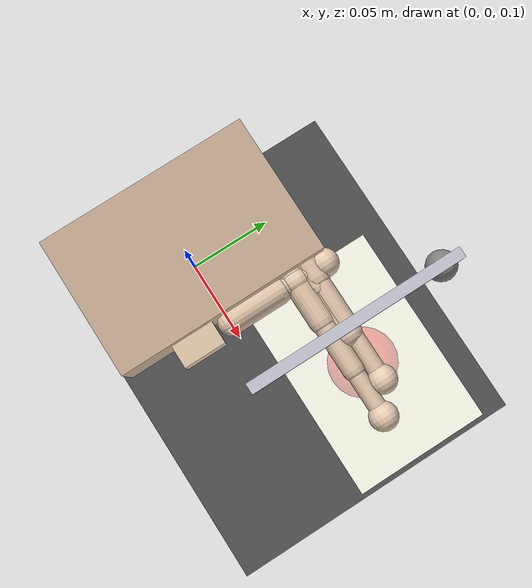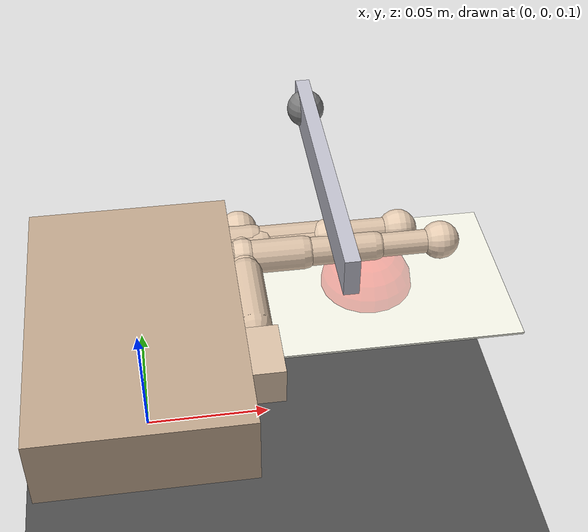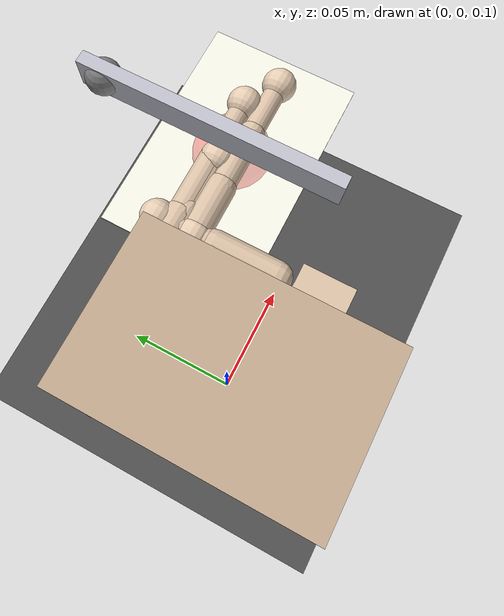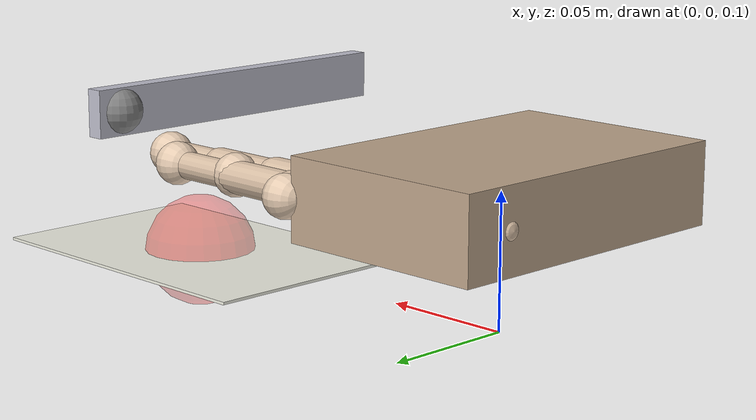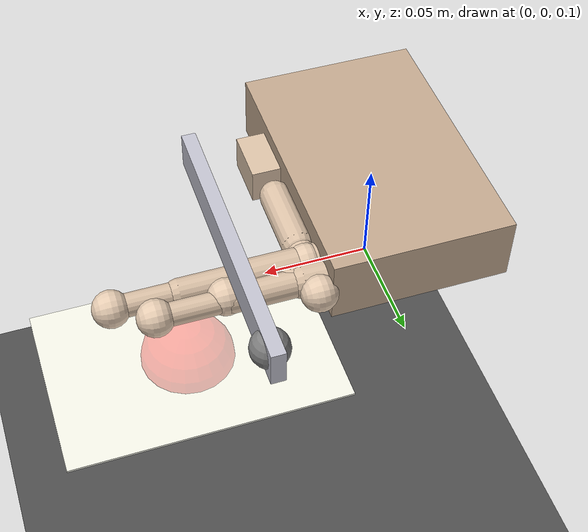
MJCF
<mujoco model="scissors_cut_scene">
  <compiler angle="degree" autolimits="true"/>
  <option timestep="0.002" gravity="0 0 -9.81"/>
  <visual>
    <headlight diffuse="0.6 0.6 0.6" ambient="0.3 0.3 0.3" specular="0 0 0"/>
    <global azimuth="120" elevation="-20"/>
  </visual>
  <asset>
    <texture name="floor_tex" type="2d" builtin="checker" width="512" height="512"
             rgb1="0.25 0.25 0.25" rgb2="0.35 0.35 0.35"/>
    <material name="floor_mat" texture="floor_tex" texrepeat="4 4" reflectance="0.2"/>
  </asset>
  <include file="dexterous_hand.xml"/>
  <worldbody>
    <light pos="0 0 1.5" dir="0 0 -1" diffuse="0.8 0.8 0.8"/>
    <light pos="0.5 0.5 1.0" dir="-0.3 -0.3 -1" diffuse="0.5 0.5 0.5"/>
    <geom name="floor" type="plane" size="2 2 0.05" material="floor_mat" condim="3"/>

    <body name="scissors" pos="0.08 0.05 0.18">
      <freejoint name="scissors_free"/>
      <body name="blade_a" pos="0 0 0">
        <geom name="blade_a_geom" type="box" size="0.003 0.06 0.008" mass="0.01"
              friction="1.2 0.005 0.0001" rgba="0.75 0.75 0.8 1"/>
      </body>
      <body name="blade_b" pos="0 0 0">
        <joint name="scissor_hinge" type="hinge" axis="0 0 1" range="0 45" damping="0.02"/>
        <geom name="blade_b_geom" type="box" size="0.003 0.06 0.008" mass="0.01"
              friction="1.2 0.005 0.0001" rgba="0.7 0.7 0.75 1"/>
      </body>
      <site name="object_site" pos="0 0.05 0" size="0.008"/>
    </body>

    <body name="paper" pos="0.1 0.05 0.12">
      <geom name="paper_geom" type="box" size="0.06 0.04 0.0005" mass="0.002"
            friction="0.5 0.005 0.0001" rgba="0.95 0.95 0.9 1" solref="0.02 1" solimp="0.9 0.95 0.001"/>
    </body>

    <site name="target" pos="0.1 0.05 0.12" size="0.02" rgba="1 0 0 0.3"/>
  </worldbody>
</mujoco>

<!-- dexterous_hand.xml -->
<mujoco model="dexterous_hand">
  <compiler angle="degree" autolimits="true" meshdir="assets"/>

  <default>
    <default class="dex_finger">
      <geom type="capsule" friction="1.0 0.005 0.0001" condim="4" rgba="0.85 0.75 0.65 1"/>
      <joint type="hinge" damping="0.05" armature="0.001" limited="true"/>
    </default>
    <default class="dex_palm">
      <geom type="box" friction="1.0 0.005 0.0001" condim="4" rgba="0.75 0.65 0.55 1"/>
    </default>
    <default class="dex_tip">
      <geom type="sphere" size="0.008" friction="1.2 0.005 0.0001" condim="4" rgba="0.9 0.8 0.7 1"/>
    </default>
    <default class="dex_actuator">
      <position kp="5" gear="1" ctrllimited="true" ctrlrange="-1 1"/>
    </default>
  </default>

  <asset>
    <texture name="grid" type="2d" builtin="checker" width="512" height="512"
             rgb1="0.2 0.3 0.4" rgb2="0.1 0.2 0.3"/>
    <material name="grid_mat" texture="grid" texrepeat="8 8" reflectance="0.1"/>
  </asset>

  <worldbody>
    <body name="palm" pos="0 0 0.15" childclass="dex_palm">
      <geom name="palm_geom" size="0.04 0.06 0.015" mass="0.3"/>

      <!-- Index finger -->
      <body name="index_prox" pos="0.035 0.04 0" quat="0.707 0 0.707 0" childclass="dex_finger">
        <joint name="index_mcp" axis="0 1 0" range="0 90"/>
        <geom name="index_prox_geom" fromto="0 0 0 0 0 0.035" size="0.007" mass="0.015"/>
        <body name="index_med" pos="0 0 0.035">
          <joint name="index_pip" axis="0 1 0" range="0 100"/>
          <geom name="index_med_geom" fromto="0 0 0 0 0 0.03" size="0.006" mass="0.015"/>
          <body name="index_dist" pos="0 0 0.03">
            <joint name="index_dip" axis="0 1 0" range="0 80"/>
            <geom name="index_dist_geom" fromto="0 0 0 0 0 0.025" size="0.005" mass="0.015"/>
            <geom name="index_tip" class="dex_tip" pos="0 0 0.028"/>
            <site name="index_tip_site" pos="0 0 0.028" size="0.005"/>
          </body>
        </body>
      </body>

      <!-- Middle finger -->
      <body name="middle_prox" pos="0.012 0.05 0" quat="0.707 0 0.707 0" childclass="dex_finger">
        <joint name="middle_mcp" axis="0 1 0" range="0 90"/>
        <geom name="middle_prox_geom" fromto="0 0 0 0 0 0.038" size="0.007" mass="0.015"/>
        <body name="middle_med" pos="0 0 0.038">
          <joint name="middle_pip" axis="0 1 0" range="0 100"/>
          <geom name="middle_med_geom" fromto="0 0 0 0 0 0.032" size="0.006" mass="0.015"/>
          <body name="middle_dist" pos="0 0 0.032">
            <joint name="middle_dip" axis="0 1 0" range="0 80"/>
            <geom name="middle_dist_geom" fromto="0 0 0 0 0 0.027" size="0.005" mass="0.015"/>
            <geom name="middle_tip" class="dex_tip" pos="0 0 0.03"/>
            <site name="middle_tip_site" pos="0 0 0.03" size="0.005"/>
          </body>
        </body>
      </body>

      <!-- Ring finger -->
      <body name="ring_prox" pos="-0.012 0.048 0" quat="0.707 0 0.707 0" childclass="dex_finger">
        <joint name="ring_mcp" axis="0 1 0" range="0 90"/>
        <geom name="ring_prox_geom" fromto="0 0 0 0 0 0.036" size="0.007" mass="0.015"/>
        <body name="ring_med" pos="0 0 0.036">
          <joint name="ring_pip" axis="0 1 0" range="0 100"/>
          <geom name="ring_med_geom" fromto="0 0 0 0 0 0.03" size="0.006" mass="0.015"/>
          <body name="ring_dist" pos="0 0 0.03">
            <joint name="ring_dip" axis="0 1 0" range="0 80"/>
            <geom name="ring_dist_geom" fromto="0 0 0 0 0 0.025" size="0.005" mass="0.015"/>
            <geom name="ring_tip" class="dex_tip" pos="0 0 0.028"/>
            <site name="ring_tip_site" pos="0 0 0.028" size="0.005"/>
          </body>
        </body>
      </body>

      <!-- Pinky finger -->
      <body name="pinky_prox" pos="-0.035 0.04 0" quat="0.707 0 0.707 0" childclass="dex_finger">
        <joint name="pinky_mcp" axis="0 1 0" range="0 90"/>
        <geom name="pinky_prox_geom" fromto="0 0 0 0 0 0.03" size="0.006" mass="0.015"/>
        <body name="pinky_med" pos="0 0 0.03">
          <joint name="pinky_pip" axis="0 1 0" range="0 100"/>
          <geom name="pinky_med_geom" fromto="0 0 0 0 0 0.025" size="0.005" mass="0.015"/>
          <body name="pinky_dist" pos="0 0 0.025">
            <joint name="pinky_dip" axis="0 1 0" range="0 80"/>
            <geom name="pinky_dist_geom" fromto="0 0 0 0 0 0.022" size="0.004" mass="0.015"/>
            <geom name="pinky_tip" class="dex_tip" pos="0 0 0.025"/>
            <site name="pinky_tip_site" pos="0 0 0.025" size="0.005"/>
          </body>
        </body>
      </body>

      <!-- Thumb (CMC + 2 links) -->
      <body name="thumb_cmc" pos="0.045 -0.02 0" quat="0.5 0.5 0.5 0.5" childclass="dex_finger">
        <joint name="thumb_cmc" axis="0 0 1" range="-30 60"/>
        <geom name="thumb_base_geom" type="box" size="0.012 0.008 0.008" mass="0.015"/>
        <body name="thumb_prox" pos="0.02 0 0">
          <joint name="thumb_mcp" axis="0 1 0" range="0 90"/>
          <geom name="thumb_prox_geom" fromto="0 0 0 0.03 0 0" size="0.007" mass="0.015"/>
          <body name="thumb_dist" pos="0.03 0 0">
            <joint name="thumb_ip" axis="0 1 0" range="0 80"/>
            <geom name="thumb_dist_geom" fromto="0 0 0 0.025 0 0" size="0.006" mass="0.015"/>
            <geom name="thumb_tip" class="dex_tip" pos="0.028 0 0"/>
            <site name="thumb_tip_site" pos="0.028 0 0" size="0.005"/>
          </body>
        </body>
      </body>

      <site name="palm_center" pos="0 0.02 0" size="0.01"/>
    </body>
  </worldbody>

  <tendon>
    <fixed name="index_tendon">
      <joint joint="index_pip" coef="1.0"/>
      <joint joint="index_dip" coef="0.6"/>
    </fixed>
    <fixed name="middle_tendon">
      <joint joint="middle_pip" coef="1.0"/>
      <joint joint="middle_dip" coef="0.6"/>
    </fixed>
    <fixed name="ring_tendon">
      <joint joint="ring_pip" coef="1.0"/>
      <joint joint="ring_dip" coef="0.6"/>
    </fixed>
    <fixed name="pinky_tendon">
      <joint joint="pinky_pip" coef="1.0"/>
      <joint joint="pinky_dip" coef="0.6"/>
    </fixed>
  </tendon>

  <actuator>
    <position class="dex_actuator" name="act_index_mcp" joint="index_mcp"/>
    <position class="dex_actuator" name="act_index_pip" joint="index_pip"/>
    <position class="dex_actuator" name="act_index_dip" joint="index_dip"/>
    <position class="dex_actuator" name="act_middle_mcp" joint="middle_mcp"/>
    <position class="dex_actuator" name="act_middle_pip" joint="middle_pip"/>
    <position class="dex_actuator" name="act_middle_dip" joint="middle_dip"/>
    <position class="dex_actuator" name="act_ring_mcp" joint="ring_mcp"/>
    <position class="dex_actuator" name="act_ring_pip" joint="ring_pip"/>
    <position class="dex_actuator" name="act_ring_dip" joint="ring_dip"/>
    <position class="dex_actuator" name="act_pinky_mcp" joint="pinky_mcp"/>
    <position class="dex_actuator" name="act_pinky_pip" joint="pinky_pip"/>
    <position class="dex_actuator" name="act_pinky_dip" joint="pinky_dip"/>
    <position class="dex_actuator" name="act_thumb_cmc" joint="thumb_cmc"/>
    <position class="dex_actuator" name="act_thumb_mcp" joint="thumb_mcp"/>
    <position class="dex_actuator" name="act_thumb_ip" joint="thumb_ip"/>
  </actuator>

  <sensor>
    <touch name="touch_index" site="index_tip_site"/>
    <touch name="touch_middle" site="middle_tip_site"/>
    <touch name="touch_ring" site="ring_tip_site"/>
    <touch name="touch_pinky" site="pinky_tip_site"/>
    <touch name="touch_thumb" site="thumb_tip_site"/>
  </sensor>
</mujoco>
